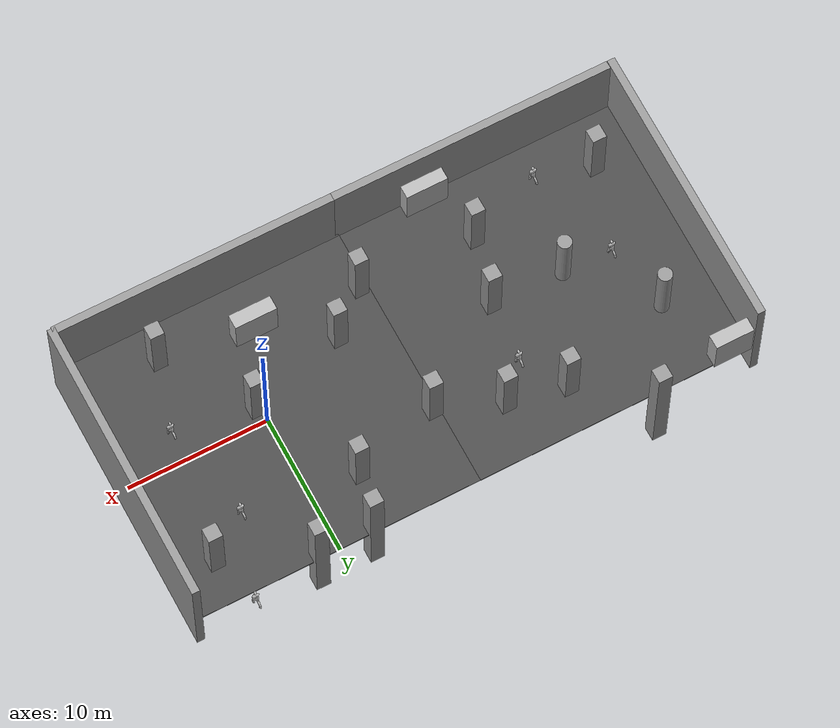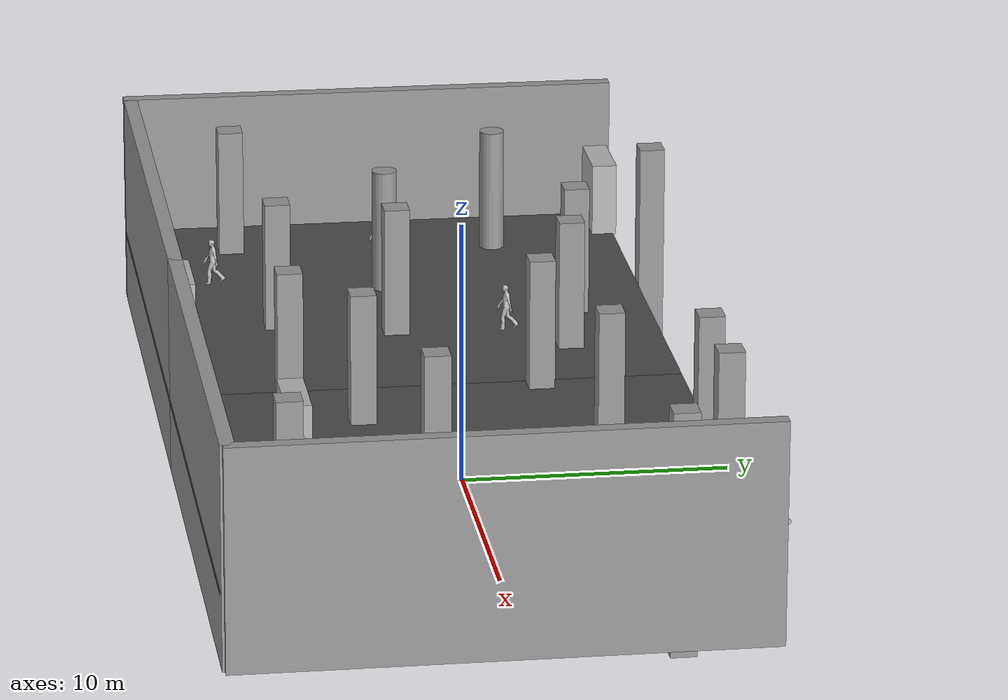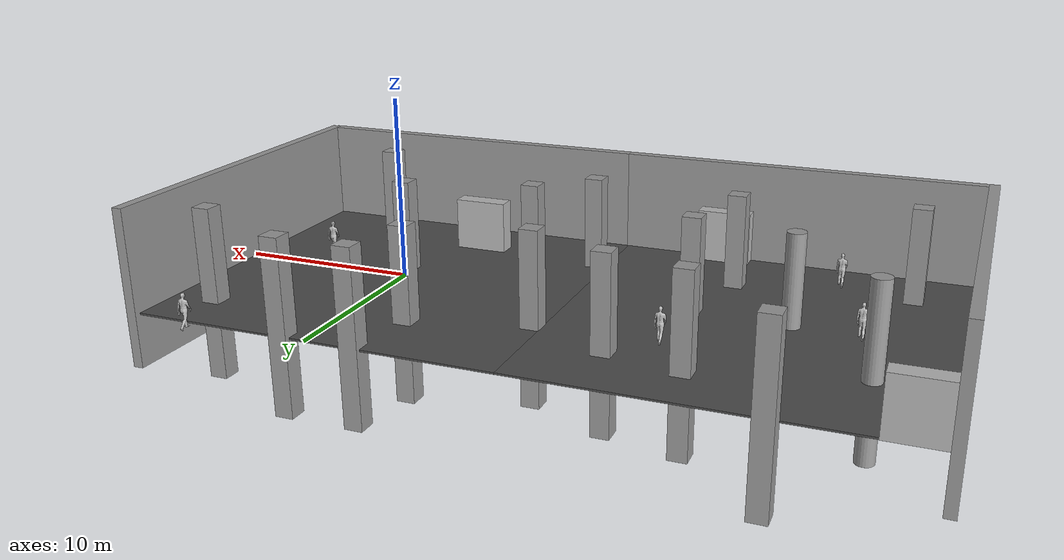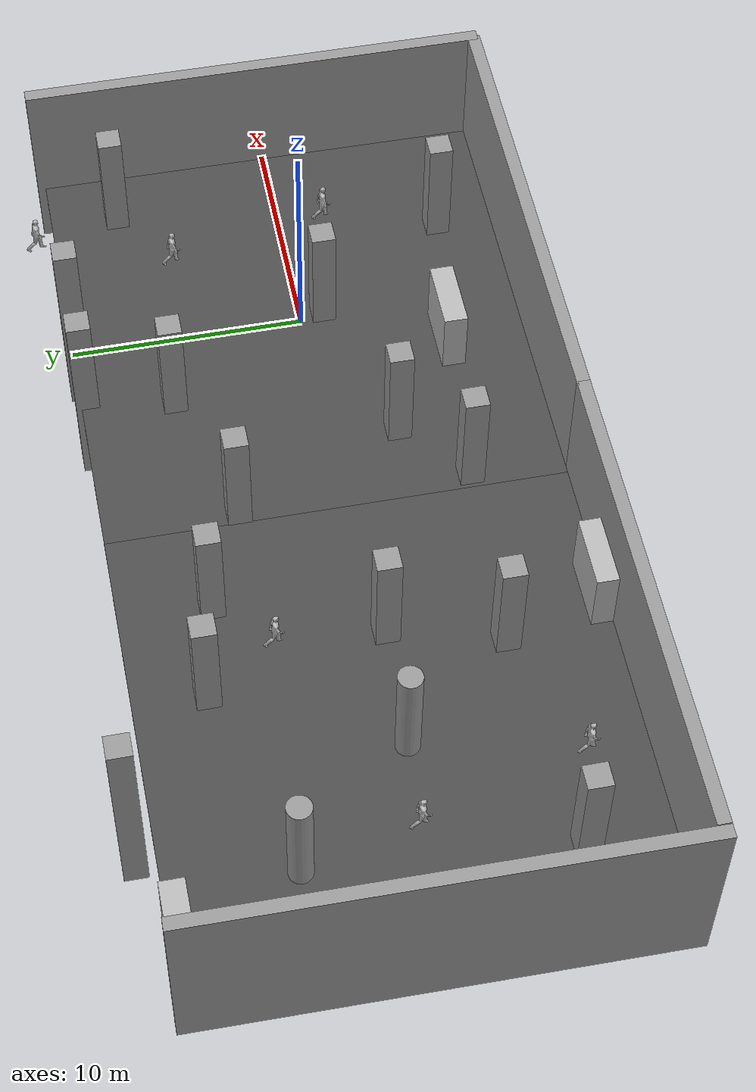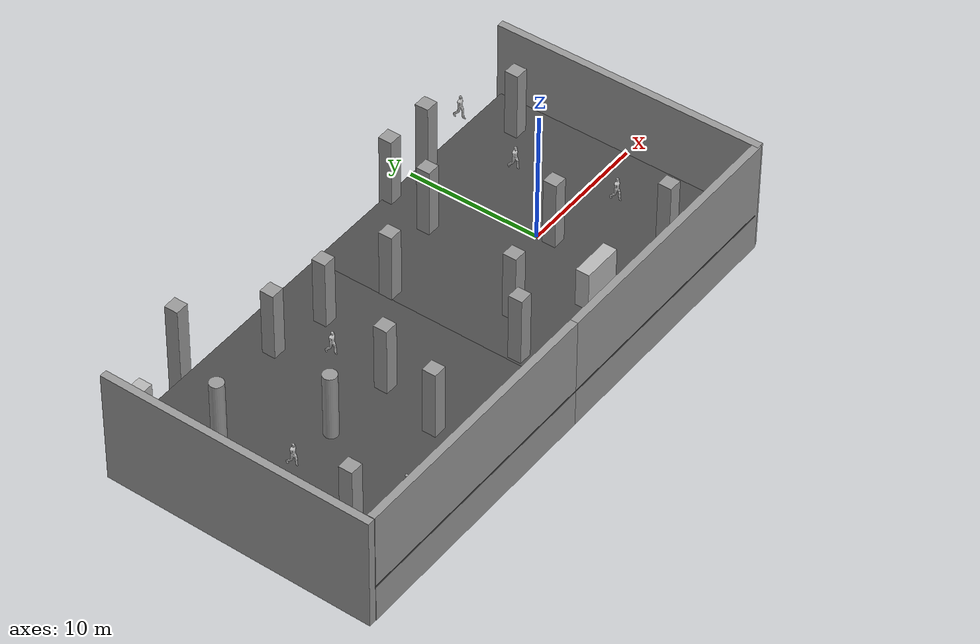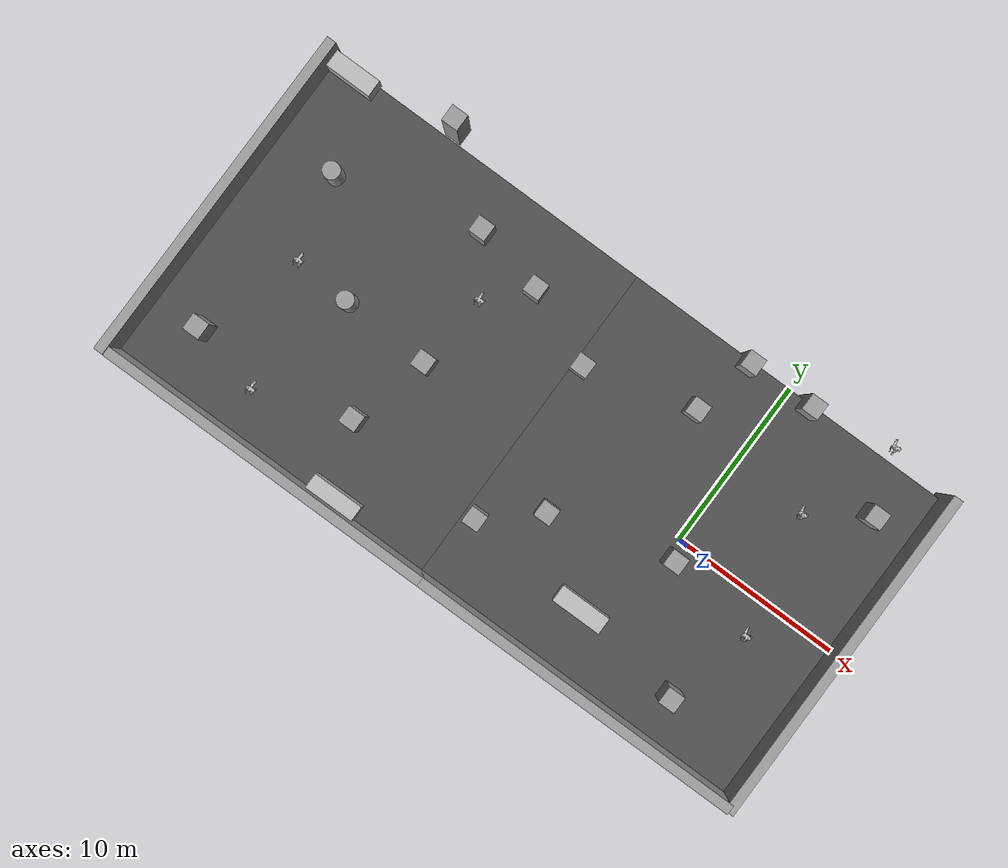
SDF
<sdf version="1.6">
 <model name="MW_world_1_0">
  <link name="link_0">
   <pose>-18.1125 7.0006 0.5 0 -0 0</pose>
   <inertial>
    <mass>9.47467</mass>
    <inertia><ixx>71.6676</ixx><ixy>0</ixy><ixz>0</ixz><iyy>71.6676</iyy><iyz>0</iyz><izz>1.57911</izz></inertia>
   </inertial>
   <visual name="visual">
    <geometry><box><size>1 1 9.47467</size></box></geometry>
    <material>
     <lighting>1</lighting>
     <script><uri>file://media/materials/scripts/gazebo.material</uri><name>Gazebo/Grey</name></script>
     <ambient>0.3 0.3 0.3 1</ambient>
     <diffuse>0.7 0.7 0.7 1</diffuse>
     <specular>0.01 0.01 0.01 1</specular>
     <emissive>0 0 0 1</emissive>
    </material>
   </visual>
   <collision name="collision">
    <geometry><box><size>1 1 9.47467</size></box></geometry>
    <surface>
     <friction>
      <ode><mu>1</mu><mu2>1</mu2><fdir1>0 0 0</fdir1><slip1>0</slip1><slip2>0</slip2></ode>
      <torsional>
       <coefficient>1</coefficient>
       <patch_radius>0</patch_radius>
       <surface_radius>0</surface_radius>
       <use_patch_radius>1</use_patch_radius>
       <ode><slip>0</slip></ode>
      </torsional>
     </friction>
     <bounce><restitution_coefficient>0</restitution_coefficient><threshold>1e+06</threshold></bounce>
     <contact>
      <collide_without_contact>0</collide_without_contact>
      <collide_without_contact_bitmask>1</collide_without_contact_bitmask>
      <collide_bitmask>1</collide_bitmask>
      <ode>
       <soft_cfm>0</soft_cfm>
       <soft_erp>0.2</soft_erp>
       <kp>1e+13</kp>
       <kd>1</kd>
       <max_vel>0.01</max_vel>
       <min_depth>0</min_depth>
      </ode>
      <bullet>
       <split_impulse>1</split_impulse>
       <split_impulse_penetration_threshold>-0.01</split_impulse_penetration_threshold>
       <soft_cfm>0</soft_cfm>
       <soft_erp>0.2</soft_erp>
       <kp>1e+13</kp>
       <kd>1</kd>
      </bullet>
     </contact>
    </surface>
   </collision>
  </link>
  <link name="link_0_0_clone_11">
   <pose>-21.6457 -0.212927 0.5 0 -0 0</pose>
   <inertial>
    <mass>9.05819</mass>
    <inertia><ixx>62.5018</ixx><ixy>0</ixy><ixz>0</ixz><iyy>62.5018</iyy><iyz>0</iyz><izz>1.13227</izz></inertia>
   </inertial>
   <visual name="visual_0">
    <geometry><cylinder><radius>0.5</radius><length>9.05819</length></cylinder></geometry>
    <material>
     <lighting>1</lighting>
     <script><uri>file://media/materials/scripts/gazebo.material</uri><name>Gazebo/Grey</name></script>
     <ambient>0.3 0.3 0.3 1</ambient>
     <diffuse>0.7 0.7 0.7 1</diffuse>
     <specular>0.01 0.01 0.01 1</specular>
     <emissive>0 0 0 1</emissive>
     <shader type="pixel"/>
    </material>
   </visual>
   <collision name="collision">
    <geometry><cylinder><radius>0.5</radius><length>9.05819</length></cylinder></geometry>
    <surface>
     <friction>
      <ode><mu>1</mu><mu2>1</mu2><fdir1>0 0 0</fdir1><slip1>0</slip1><slip2>0</slip2></ode>
      <torsional>
       <coefficient>1</coefficient>
       <patch_radius>0</patch_radius>
       <surface_radius>0</surface_radius>
       <use_patch_radius>1</use_patch_radius>
       <ode><slip>0</slip></ode>
      </torsional>
     </friction>
     <bounce><restitution_coefficient>0</restitution_coefficient><threshold>1e+06</threshold></bounce>
     <contact>
      <collide_without_contact>0</collide_without_contact>
      <collide_without_contact_bitmask>1</collide_without_contact_bitmask>
      <collide_bitmask>1</collide_bitmask>
      <ode>
       <soft_cfm>0</soft_cfm>
       <soft_erp>0.2</soft_erp>
       <kp>1e+13</kp>
       <kd>1</kd>
       <max_vel>0.01</max_vel>
       <min_depth>0</min_depth>
      </ode>
      <bullet>
       <split_impulse>1</split_impulse>
       <split_impulse_penetration_threshold>-0.01</split_impulse_penetration_threshold>
       <soft_cfm>0</soft_cfm>
       <soft_erp>0.2</soft_erp>
       <kp>1e+13</kp>
       <kd>1</kd>
      </bullet>
     </contact>
    </surface>
   </collision>
  </link>
  <link name="link_0_0_clone_12">
   <pose>-26.2128 4.78707 0.5 0 -0 0</pose>
   <inertial>
    <mass>9.05819</mass>
    <inertia><ixx>62.5018</ixx><ixy>0</ixy><ixz>0</ixz><iyy>62.5018</iyy><iyz>0</iyz><izz>1.13227</izz></inertia>
   </inertial>
   <visual name="visual_0">
    <geometry><cylinder><radius>0.5</radius><length>9.05819</length></cylinder></geometry>
    <material>
     <lighting>1</lighting>
     <script><uri>file://media/materials/scripts/gazebo.material</uri><name>Gazebo/Grey</name></script>
     <ambient>0.3 0.3 0.3 1</ambient>
     <diffuse>0.7 0.7 0.7 1</diffuse>
     <specular>0.01 0.01 0.01 1</specular>
     <emissive>0 0 0 1</emissive>
     <shader type="pixel"/>
    </material>
   </visual>
   <collision name="collision">
    <geometry><cylinder><radius>0.5</radius><length>9.05819</length></cylinder></geometry>
    <surface>
     <friction>
      <ode><mu>1</mu><mu2>1</mu2><fdir1>0 0 0</fdir1><slip1>0</slip1><slip2>0</slip2></ode>
      <torsional>
       <coefficient>1</coefficient>
       <patch_radius>0</patch_radius>
       <surface_radius>0</surface_radius>
       <use_patch_radius>1</use_patch_radius>
       <ode><slip>0</slip></ode>
      </torsional>
     </friction>
     <bounce><restitution_coefficient>0</restitution_coefficient><threshold>1e+06</threshold></bounce>
     <contact>
      <collide_without_contact>0</collide_without_contact>
      <collide_without_contact_bitmask>1</collide_without_contact_bitmask>
      <collide_bitmask>1</collide_bitmask>
      <ode>
       <soft_cfm>0</soft_cfm>
       <soft_erp>0.2</soft_erp>
       <kp>1e+13</kp>
       <kd>1</kd>
       <max_vel>0.01</max_vel>
       <min_depth>0</min_depth>
      </ode>
      <bullet>
       <split_impulse>1</split_impulse>
       <split_impulse_penetration_threshold>-0.01</split_impulse_penetration_threshold>
       <soft_cfm>0</soft_cfm>
       <soft_erp>0.2</soft_erp>
       <kp>1e+13</kp>
       <kd>1</kd>
      </bullet>
     </contact>
    </surface>
   </collision>
  </link>
  <link name="link_0_clone">
   <pose>-17.6891 -4.9994 0.5 0 -0 0</pose>
   <inertial>
    <mass>9.47467</mass>
    <inertia><ixx>71.6676</ixx><ixy>0</ixy><ixz>0</ixz><iyy>71.6676</iyy><iyz>0</iyz><izz>1.57911</izz></inertia>
   </inertial>
   <visual name="visual">
    <geometry><box><size>1 1 9.47467</size></box></geometry>
    <material>
     <lighting>1</lighting>
     <script><uri>file://media/materials/scripts/gazebo.material</uri><name>Gazebo/Grey</name></script>
     <ambient>0.3 0.3 0.3 1</ambient>
     <diffuse>0.7 0.7 0.7 1</diffuse>
     <specular>0.01 0.01 0.01 1</specular>
     <emissive>0 0 0 1</emissive>
     <shader type="pixel"/>
    </material>
   </visual>
   <collision name="collision">
    <geometry><box><size>1 1 9.47467</size></box></geometry>
    <surface>
     <friction>
      <ode><mu>1</mu><mu2>1</mu2><fdir1>0 0 0</fdir1><slip1>0</slip1><slip2>0</slip2></ode>
      <torsional>
       <coefficient>1</coefficient>
       <patch_radius>0</patch_radius>
       <surface_radius>0</surface_radius>
       <use_patch_radius>1</use_patch_radius>
       <ode><slip>0</slip></ode>
      </torsional>
     </friction>
     <bounce><restitution_coefficient>0</restitution_coefficient><threshold>1e+06</threshold></bounce>
     <contact>
      <collide_without_contact>0</collide_without_contact>
      <collide_without_contact_bitmask>1</collide_without_contact_bitmask>
      <collide_bitmask>1</collide_bitmask>
      <ode>
       <soft_cfm>0</soft_cfm>
       <soft_erp>0.2</soft_erp>
       <kp>1e+13</kp>
       <kd>1</kd>
       <max_vel>0.01</max_vel>
       <min_depth>0</min_depth>
      </ode>
      <bullet>
       <split_impulse>1</split_impulse>
       <split_impulse_penetration_threshold>-0.01</split_impulse_penetration_threshold>
       <soft_cfm>0</soft_cfm>
       <soft_erp>0.2</soft_erp>
       <kp>1e+13</kp>
       <kd>1</kd>
      </bullet>
     </contact>
    </surface>
   </collision>
  </link>
  <link name="link_0_clone_0">
   <pose>0.330198 -0.999398 0.5 0 -0 0</pose>
   <inertial>
    <mass>9.47467</mass>
    <inertia><ixx>71.6676</ixx><ixy>0</ixy><ixz>0</ixz><iyy>71.6676</iyy><iyz>0</iyz><izz>1.57911</izz></inertia>
   </inertial>
   <visual name="visual">
    <geometry><box><size>1 1 9.47467</size></box></geometry>
    <material>
     <lighting>1</lighting>
     <script><uri>file://media/materials/scripts/gazebo.material</uri><name>Gazebo/Grey</name></script>
     <ambient>0.3 0.3 0.3 1</ambient>
     <diffuse>0.7 0.7 0.7 1</diffuse>
     <specular>0.01 0.01 0.01 1</specular>
     <emissive>0 0 0 1</emissive>
     <shader type="pixel"/>
    </material>
   </visual>
   <collision name="collision">
    <geometry><box><size>1 1 9.47467</size></box></geometry>
    <surface>
     <friction>
      <ode><mu>1</mu><mu2>1</mu2><fdir1>0 0 0</fdir1><slip1>0</slip1><slip2>0</slip2></ode>
      <torsional>
       <coefficient>1</coefficient>
       <patch_radius>0</patch_radius>
       <surface_radius>0</surface_radius>
       <use_patch_radius>1</use_patch_radius>
       <ode><slip>0</slip></ode>
      </torsional>
     </friction>
     <bounce><restitution_coefficient>0</restitution_coefficient><threshold>1e+06</threshold></bounce>
     <contact>
      <collide_without_contact>0</collide_without_contact>
      <collide_without_contact_bitmask>1</collide_without_contact_bitmask>
      <collide_bitmask>1</collide_bitmask>
      <ode>
       <soft_cfm>0</soft_cfm>
       <soft_erp>0.2</soft_erp>
       <kp>1e+13</kp>
       <kd>1</kd>
       <max_vel>0.01</max_vel>
       <min_depth>0</min_depth>
      </ode>
      <bullet>
       <split_impulse>1</split_impulse>
       <split_impulse_penetration_threshold>-0.01</split_impulse_penetration_threshold>
       <soft_cfm>0</soft_cfm>
       <soft_erp>0.2</soft_erp>
       <kp>1e+13</kp>
       <kd>1</kd>
      </bullet>
     </contact>
    </surface>
   </collision>
  </link>
  <link name="link_0_clone_clone">
   <pose>-3.4519 6.08676 0.5 0 -0 0</pose>
   <inertial>
    <mass>9.47467</mass>
    <inertia><ixx>71.6676</ixx><ixy>0</ixy><ixz>0</ixz><iyy>71.6676</iyy><iyz>0</iyz><izz>1.57911</izz></inertia>
   </inertial>
   <visual name="visual">
    <geometry><box><size>1 1 9.47467</size></box></geometry>
    <material>
     <lighting>1</lighting>
     <script><uri>file://media/materials/scripts/gazebo.material</uri><name>Gazebo/Grey</name></script>
     <ambient>0.3 0.3 0.3 1</ambient>
     <diffuse>0.7 0.7 0.7 1</diffuse>
     <specular>0.01 0.01 0.01 1</specular>
     <emissive>0 0 0 1</emissive>
     <shader type="pixel"/>
    </material>
   </visual>
   <collision name="collision">
    <geometry><box><size>1 1 9.47467</size></box></geometry>
    <surface>
     <friction>
      <ode><mu>1</mu><mu2>1</mu2><fdir1>0 0 0</fdir1><slip1>0</slip1><slip2>0</slip2></ode>
      <torsional>
       <coefficient>1</coefficient>
       <patch_radius>0</patch_radius>
       <surface_radius>0</surface_radius>
       <use_patch_radius>1</use_patch_radius>
       <ode><slip>0</slip></ode>
      </torsional>
     </friction>
     <bounce><restitution_coefficient>0</restitution_coefficient><threshold>1e+06</threshold></bounce>
     <contact>
      <collide_without_contact>0</collide_without_contact>
      <collide_without_contact_bitmask>1</collide_without_contact_bitmask>
      <collide_bitmask>1</collide_bitmask>
      <ode>
       <soft_cfm>0</soft_cfm>
       <soft_erp>0.2</soft_erp>
       <kp>1e+13</kp>
       <kd>1</kd>
       <max_vel>0.01</max_vel>
       <min_depth>0</min_depth>
      </ode>
      <bullet>
       <split_impulse>1</split_impulse>
       <split_impulse_penetration_threshold>-0.01</split_impulse_penetration_threshold>
       <soft_cfm>0</soft_cfm>
       <soft_erp>0.2</soft_erp>
       <kp>1e+13</kp>
       <kd>1</kd>
      </bullet>
     </contact>
    </surface>
   </collision>
  </link>
  <link name="link_0_clone_clone_0">
   <pose>-9.4519 -5.40294 0.5 0 -0 0</pose>
   <inertial>
    <mass>9.47467</mass>
    <inertia><ixx>71.6676</ixx><ixy>0</ixy><ixz>0</ixz><iyy>71.6676</iyy><iyz>0</iyz><izz>1.57911</izz></inertia>
   </inertial>
   <visual name="visual">
    <geometry><box><size>1 1 9.47467</size></box></geometry>
    <material>
     <lighting>1</lighting>
     <script><uri>file://media/materials/scripts/gazebo.material</uri><name>Gazebo/Grey</name></script>
     <ambient>0.3 0.3 0.3 1</ambient>
     <diffuse>0.7 0.7 0.7 1</diffuse>
     <specular>0.01 0.01 0.01 1</specular>
     <emissive>0 0 0 1</emissive>
     <shader type="pixel"/>
    </material>
   </visual>
   <collision name="collision">
    <geometry><box><size>1 1 9.47467</size></box></geometry>
    <surface>
     <friction>
      <ode><mu>1</mu><mu2>1</mu2><fdir1>0 0 0</fdir1><slip1>0</slip1><slip2>0</slip2></ode>
      <torsional>
       <coefficient>1</coefficient>
       <patch_radius>0</patch_radius>
       <surface_radius>0</surface_radius>
       <use_patch_radius>1</use_patch_radius>
       <ode><slip>0</slip></ode>
      </torsional>
     </friction>
     <bounce><restitution_coefficient>0</restitution_coefficient><threshold>1e+06</threshold></bounce>
     <contact>
      <collide_without_contact>0</collide_without_contact>
      <collide_without_contact_bitmask>1</collide_without_contact_bitmask>
      <collide_bitmask>1</collide_bitmask>
      <ode>
       <soft_cfm>0</soft_cfm>
       <soft_erp>0.2</soft_erp>
       <kp>1e+13</kp>
       <kd>1</kd>
       <max_vel>0.01</max_vel>
       <min_depth>0</min_depth>
      </ode>
      <bullet>
       <split_impulse>1</split_impulse>
       <split_impulse_penetration_threshold>-0.01</split_impulse_penetration_threshold>
       <soft_cfm>0</soft_cfm>
       <soft_erp>0.2</soft_erp>
       <kp>1e+13</kp>
       <kd>1</kd>
      </bullet>
     </contact>
    </surface>
   </collision>
  </link>
  <link name="link_0_clone_clone_1">
   <pose>-16.4519 -0.40294 0.5 0 -0 0</pose>
   <inertial>
    <mass>9.47467</mass>
    <inertia><ixx>71.6676</ixx><ixy>0</ixy><ixz>0</ixz><iyy>71.6676</iyy><iyz>0</iyz><izz>1.57911</izz></inertia>
   </inertial>
   <visual name="visual">
    <geometry><box><size>1 1 9.47467</size></box></geometry>
    <material>
     <lighting>1</lighting>
     <script><uri>file://media/materials/scripts/gazebo.material</uri><name>Gazebo/Grey</name></script>
     <ambient>0.3 0.3 0.3 1</ambient>
     <diffuse>0.7 0.7 0.7 1</diffuse>
     <specular>0.01 0.01 0.01 1</specular>
     <emissive>0 0 0 1</emissive>
     <shader type="pixel"/>
    </material>
   </visual>
   <collision name="collision">
    <geometry><box><size>1 1 9.47467</size></box></geometry>
    <surface>
     <friction>
      <ode><mu>1</mu><mu2>1</mu2><fdir1>0 0 0</fdir1><slip1>0</slip1><slip2>0</slip2></ode>
      <torsional>
       <coefficient>1</coefficient>
       <patch_radius>0</patch_radius>
       <surface_radius>0</surface_radius>
       <use_patch_radius>1</use_patch_radius>
       <ode><slip>0</slip></ode>
      </torsional>
     </friction>
     <bounce><restitution_coefficient>0</restitution_coefficient><threshold>1e+06</threshold></bounce>
     <contact>
      <collide_without_contact>0</collide_without_contact>
      <collide_without_contact_bitmask>1</collide_without_contact_bitmask>
      <collide_bitmask>1</collide_bitmask>
      <ode>
       <soft_cfm>0</soft_cfm>
       <soft_erp>0.2</soft_erp>
       <kp>1e+13</kp>
       <kd>1</kd>
       <max_vel>0.01</max_vel>
       <min_depth>0</min_depth>
      </ode>
      <bullet>
       <split_impulse>1</split_impulse>
       <split_impulse_penetration_threshold>-0.01</split_impulse_penetration_threshold>
       <soft_cfm>0</soft_cfm>
       <soft_erp>0.2</soft_erp>
       <kp>1e+13</kp>
       <kd>1</kd>
      </bullet>
     </contact>
    </surface>
   </collision>
  </link>
  <link name="link_0_clone_clone_1_clone">
   <pose>-27.0695 -5.91768 0.5 0 -0 0</pose>
   <inertial>
    <mass>9.47467</mass>
    <inertia><ixx>71.6676</ixx><ixy>0</ixy><ixz>0</ixz><iyy>71.6676</iyy><iyz>0</iyz><izz>1.57911</izz></inertia>
   </inertial>
   <visual name="visual">
    <geometry><box><size>1 1 9.47467</size></box></geometry>
    <material>
     <lighting>1</lighting>
     <script><uri>file://media/materials/scripts/gazebo.material</uri><name>Gazebo/Grey</name></script>
     <ambient>0.3 0.3 0.3 1</ambient>
     <diffuse>0.7 0.7 0.7 1</diffuse>
     <specular>0.01 0.01 0.01 1</specular>
     <emissive>0 0 0 1</emissive>
     <shader type="pixel"/>
    </material>
   </visual>
   <collision name="collision">
    <geometry><box><size>1 1 9.47467</size></box></geometry>
    <surface>
     <friction>
      <ode><mu>1</mu><mu2>1</mu2><fdir1>0 0 0</fdir1><slip1>0</slip1><slip2>0</slip2></ode>
      <torsional>
       <coefficient>1</coefficient>
       <patch_radius>0</patch_radius>
       <surface_radius>0</surface_radius>
       <use_patch_radius>1</use_patch_radius>
       <ode><slip>0</slip></ode>
      </torsional>
     </friction>
     <bounce><restitution_coefficient>0</restitution_coefficient><threshold>1e+06</threshold></bounce>
     <contact>
      <collide_without_contact>0</collide_without_contact>
      <collide_without_contact_bitmask>1</collide_without_contact_bitmask>
      <collide_bitmask>1</collide_bitmask>
      <ode>
       <soft_cfm>0</soft_cfm>
       <soft_erp>0.2</soft_erp>
       <kp>1e+13</kp>
       <kd>1</kd>
       <max_vel>0.01</max_vel>
       <min_depth>0</min_depth>
      </ode>
      <bullet>
       <split_impulse>1</split_impulse>
       <split_impulse_penetration_threshold>-0.01</split_impulse_penetration_threshold>
       <soft_cfm>0</soft_cfm>
       <soft_erp>0.2</soft_erp>
       <kp>1e+13</kp>
       <kd>1</kd>
      </bullet>
     </contact>
    </surface>
   </collision>
  </link>
  <link name="link_0_clone_clone_1_clone_0">
   <pose>4.38344 -6.91768 0.5 0 -0 0</pose>
   <inertial>
    <mass>9.47467</mass>
    <inertia><ixx>71.6676</ixx><ixy>0</ixy><ixz>0</ixz><iyy>71.6676</iyy><iyz>0</iyz><izz>1.57911</izz></inertia>
   </inertial>
   <visual name="visual">
    <geometry><box><size>1 1 9.47467</size></box></geometry>
    <material>
     <lighting>1</lighting>
     <script><uri>file://media/materials/scripts/gazebo.material</uri><name>Gazebo/Grey</name></script>
     <ambient>0.3 0.3 0.3 1</ambient>
     <diffuse>0.7 0.7 0.7 1</diffuse>
     <specular>0.01 0.01 0.01 1</specular>
     <emissive>0 0 0 1</emissive>
     <shader type="pixel"/>
    </material>
   </visual>
   <collision name="collision">
    <geometry><box><size>1 1 9.47467</size></box></geometry>
    <surface>
     <friction>
      <ode><mu>1</mu><mu2>1</mu2><fdir1>0 0 0</fdir1><slip1>0</slip1><slip2>0</slip2></ode>
      <torsional>
       <coefficient>1</coefficient>
       <patch_radius>0</patch_radius>
       <surface_radius>0</surface_radius>
       <use_patch_radius>1</use_patch_radius>
       <ode><slip>0</slip></ode>
      </torsional>
     </friction>
     <bounce><restitution_coefficient>0</restitution_coefficient><threshold>1e+06</threshold></bounce>
     <contact>
      <collide_without_contact>0</collide_without_contact>
      <collide_without_contact_bitmask>1</collide_without_contact_bitmask>
      <collide_bitmask>1</collide_bitmask>
      <ode>
       <soft_cfm>0</soft_cfm>
       <soft_erp>0.2</soft_erp>
       <kp>1e+13</kp>
       <kd>1</kd>
       <max_vel>0.01</max_vel>
       <min_depth>0</min_depth>
      </ode>
      <bullet>
       <split_impulse>1</split_impulse>
       <split_impulse_penetration_threshold>-0.01</split_impulse_penetration_threshold>
       <soft_cfm>0</soft_cfm>
       <soft_erp>0.2</soft_erp>
       <kp>1e+13</kp>
       <kd>1</kd>
      </bullet>
     </contact>
    </surface>
   </collision>
  </link>
  <link name="link_0_clone_clone_1_clone_1">
   <pose>7.38344 7.08232 0.5 0 -0 0</pose>
   <inertial>
    <mass>9.47467</mass>
    <inertia><ixx>71.6676</ixx><ixy>0</ixy><ixz>0</ixz><iyy>71.6676</iyy><iyz>0</iyz><izz>1.57911</izz></inertia>
   </inertial>
   <visual name="visual">
    <geometry><box><size>1 1 9.47467</size></box></geometry>
    <material>
     <lighting>1</lighting>
     <script><uri>file://media/materials/scripts/gazebo.material</uri><name>Gazebo/Grey</name></script>
     <ambient>0.3 0.3 0.3 1</ambient>
     <diffuse>0.7 0.7 0.7 1</diffuse>
     <specular>0.01 0.01 0.01 1</specular>
     <emissive>0 0 0 1</emissive>
     <shader type="pixel"/>
    </material>
   </visual>
   <collision name="collision">
    <geometry><box><size>1 1 9.47467</size></box></geometry>
    <surface>
     <friction>
      <ode><mu>1</mu><mu2>1</mu2><fdir1>0 0 0</fdir1><slip1>0</slip1><slip2>0</slip2></ode>
      <torsional>
       <coefficient>1</coefficient>
       <patch_radius>0</patch_radius>
       <surface_radius>0</surface_radius>
       <use_patch_radius>1</use_patch_radius>
       <ode><slip>0</slip></ode>
      </torsional>
     </friction>
     <bounce><restitution_coefficient>0</restitution_coefficient><threshold>1e+06</threshold></bounce>
     <contact>
      <collide_without_contact>0</collide_without_contact>
      <collide_without_contact_bitmask>1</collide_without_contact_bitmask>
      <collide_bitmask>1</collide_bitmask>
      <ode>
       <soft_cfm>0</soft_cfm>
       <soft_erp>0.2</soft_erp>
       <kp>1e+13</kp>
       <kd>1</kd>
       <max_vel>0.01</max_vel>
       <min_depth>0</min_depth>
      </ode>
      <bullet>
       <split_impulse>1</split_impulse>
       <split_impulse_penetration_threshold>-0.01</split_impulse_penetration_threshold>
       <soft_cfm>0</soft_cfm>
       <soft_erp>0.2</soft_erp>
       <kp>1e+13</kp>
       <kd>1</kd>
      </bullet>
     </contact>
    </surface>
   </collision>
  </link>
  <link name="link_0_clone_clone_1_clone_2">
   <pose>-6.61656 -2.91768 0.5 0 -0 0</pose>
   <inertial>
    <mass>9.47467</mass>
    <inertia><ixx>71.6676</ixx><ixy>0</ixy><ixz>0</ixz><iyy>71.6676</iyy><iyz>0</iyz><izz>1.57911</izz></inertia>
   </inertial>
   <visual name="visual">
    <geometry><box><size>1 1 9.47467</size></box></geometry>
    <material>
     <lighting>1</lighting>
     <script><uri>file://media/materials/scripts/gazebo.material</uri><name>Gazebo/Grey</name></script>
     <ambient>0.3 0.3 0.3 1</ambient>
     <diffuse>0.7 0.7 0.7 1</diffuse>
     <specular>0.01 0.01 0.01 1</specular>
     <emissive>0 0 0 1</emissive>
     <shader type="pixel"/>
    </material>
   </visual>
   <collision name="collision">
    <geometry><box><size>1 1 9.47467</size></box></geometry>
    <surface>
     <friction>
      <ode><mu>1</mu><mu2>1</mu2><fdir1>0 0 0</fdir1><slip1>0</slip1><slip2>0</slip2></ode>
      <torsional>
       <coefficient>1</coefficient>
       <patch_radius>0</patch_radius>
       <surface_radius>0</surface_radius>
       <use_patch_radius>1</use_patch_radius>
       <ode><slip>0</slip></ode>
      </torsional>
     </friction>
     <bounce><restitution_coefficient>0</restitution_coefficient><threshold>1e+06</threshold></bounce>
     <contact>
      <collide_without_contact>0</collide_without_contact>
      <collide_without_contact_bitmask>1</collide_without_contact_bitmask>
      <collide_bitmask>1</collide_bitmask>
      <ode>
       <soft_cfm>0</soft_cfm>
       <soft_erp>0.2</soft_erp>
       <kp>1e+13</kp>
       <kd>1</kd>
       <max_vel>0.01</max_vel>
       <min_depth>0</min_depth>
      </ode>
      <bullet>
       <split_impulse>1</split_impulse>
       <split_impulse_penetration_threshold>-0.01</split_impulse_penetration_threshold>
       <soft_cfm>0</soft_cfm>
       <soft_erp>0.2</soft_erp>
       <kp>1e+13</kp>
       <kd>1</kd>
      </bullet>
     </contact>
    </surface>
   </collision>
  </link>
  <link name="link_0_clone_clone_clone_2_clone">
   <pose>-14.0181 6.18483 0.5 0 -0 0</pose>
   <inertial>
    <mass>9.47467</mass>
    <inertia><ixx>71.6676</ixx><ixy>0</ixy><ixz>0</ixz><iyy>71.6676</iyy><iyz>0</iyz><izz>1.57911</izz></inertia>
   </inertial>
   <visual name="visual">
    <geometry><box><size>1 1 9.47467</size></box></geometry>
    <material>
     <lighting>1</lighting>
     <script><uri>file://media/materials/scripts/gazebo.material</uri><name>Gazebo/Grey</name></script>
     <ambient>0.3 0.3 0.3 1</ambient>
     <diffuse>0.7 0.7 0.7 1</diffuse>
     <specular>0.01 0.01 0.01 1</specular>
     <emissive>0 0 0 1</emissive>
     <shader type="pixel"/>
    </material>
   </visual>
   <collision name="collision">
    <geometry><box><size>1 1 9.47467</size></box></geometry>
    <surface>
     <friction>
      <ode><mu>1</mu><mu2>1</mu2><fdir1>0 0 0</fdir1><slip1>0</slip1><slip2>0</slip2></ode>
      <torsional>
       <coefficient>1</coefficient>
       <patch_radius>0</patch_radius>
       <surface_radius>0</surface_radius>
       <use_patch_radius>1</use_patch_radius>
       <ode><slip>0</slip></ode>
      </torsional>
     </friction>
     <bounce><restitution_coefficient>0</restitution_coefficient><threshold>1e+06</threshold></bounce>
     <contact>
      <collide_without_contact>0</collide_without_contact>
      <collide_without_contact_bitmask>1</collide_without_contact_bitmask>
      <collide_bitmask>1</collide_bitmask>
      <ode>
       <soft_cfm>0</soft_cfm>
       <soft_erp>0.2</soft_erp>
       <kp>1e+13</kp>
       <kd>1</kd>
       <max_vel>0.01</max_vel>
       <min_depth>0</min_depth>
      </ode>
      <bullet>
       <split_impulse>1</split_impulse>
       <split_impulse_penetration_threshold>-0.01</split_impulse_penetration_threshold>
       <soft_cfm>0</soft_cfm>
       <soft_erp>0.2</soft_erp>
       <kp>1e+13</kp>
       <kd>1</kd>
      </bullet>
     </contact>
    </surface>
   </collision>
  </link>
  <link name="link_0_clone_clone_clone_3">
   <pose>1.35425 9.78707 0.5 0 -0 0</pose>
   <inertial>
    <mass>9.47467</mass>
    <inertia><ixx>71.6676</ixx><ixy>0</ixy><ixz>0</ixz><iyy>71.6676</iyy><iyz>0</iyz><izz>1.57911</izz></inertia>
   </inertial>
   <visual name="visual">
    <geometry><box><size>1 1 9.47467</size></box></geometry>
    <material>
     <lighting>1</lighting>
     <script><uri>file://media/materials/scripts/gazebo.material</uri><name>Gazebo/Grey</name></script>
     <ambient>0.3 0.3 0.3 1</ambient>
     <diffuse>0.7 0.7 0.7 1</diffuse>
     <specular>0.01 0.01 0.01 1</specular>
     <emissive>0 0 0 1</emissive>
     <shader type="pixel"/>
    </material>
   </visual>
   <collision name="collision">
    <geometry><box><size>1 1 9.47467</size></box></geometry>
    <surface>
     <friction>
      <ode><mu>1</mu><mu2>1</mu2><fdir1>0 0 0</fdir1><slip1>0</slip1><slip2>0</slip2></ode>
      <torsional>
       <coefficient>1</coefficient>
       <patch_radius>0</patch_radius>
       <surface_radius>0</surface_radius>
       <use_patch_radius>1</use_patch_radius>
       <ode><slip>0</slip></ode>
      </torsional>
     </friction>
     <bounce><restitution_coefficient>0</restitution_coefficient><threshold>1e+06</threshold></bounce>
     <contact>
      <collide_without_contact>0</collide_without_contact>
      <collide_without_contact_bitmask>1</collide_without_contact_bitmask>
      <collide_bitmask>1</collide_bitmask>
      <ode>
       <soft_cfm>0</soft_cfm>
       <soft_erp>0.2</soft_erp>
       <kp>1e+13</kp>
       <kd>1</kd>
       <max_vel>0.01</max_vel>
       <min_depth>0</min_depth>
      </ode>
      <bullet>
       <split_impulse>1</split_impulse>
       <split_impulse_penetration_threshold>-0.01</split_impulse_penetration_threshold>
       <soft_cfm>0</soft_cfm>
       <soft_erp>0.2</soft_erp>
       <kp>1e+13</kp>
       <kd>1</kd>
      </bullet>
     </contact>
    </surface>
   </collision>
  </link>
  <link name="link_0_clone_clone_clone_4_clone">
   <pose>-2.57831 9.73205 0.5 0 -0 0</pose>
   <inertial>
    <mass>9.47467</mass>
    <inertia><ixx>71.6676</ixx><ixy>0</ixy><ixz>0</ixz><iyy>71.6676</iyy><iyz>0</iyz><izz>1.57911</izz></inertia>
   </inertial>
   <visual name="visual">
    <geometry><box><size>1 1 9.47467</size></box></geometry>
    <material>
     <lighting>1</lighting>
     <script><uri>file://media/materials/scripts/gazebo.material</uri><name>Gazebo/Grey</name></script>
     <ambient>0.3 0.3 0.3 1</ambient>
     <diffuse>0.7 0.7 0.7 1</diffuse>
     <specular>0.01 0.01 0.01 1</specular>
     <emissive>0 0 0 1</emissive>
     <shader type="pixel"/>
    </material>
   </visual>
   <collision name="collision">
    <geometry><box><size>1 1 9.47467</size></box></geometry>
    <surface>
     <friction>
      <ode><mu>1</mu><mu2>1</mu2><fdir1>0 0 0</fdir1><slip1>0</slip1><slip2>0</slip2></ode>
      <torsional>
       <coefficient>1</coefficient>
       <patch_radius>0</patch_radius>
       <surface_radius>0</surface_radius>
       <use_patch_radius>1</use_patch_radius>
       <ode><slip>0</slip></ode>
      </torsional>
     </friction>
     <bounce><restitution_coefficient>0</restitution_coefficient><threshold>1e+06</threshold></bounce>
     <contact>
      <collide_without_contact>0</collide_without_contact>
      <collide_without_contact_bitmask>1</collide_without_contact_bitmask>
      <collide_bitmask>1</collide_bitmask>
      <ode>
       <soft_cfm>0</soft_cfm>
       <soft_erp>0.2</soft_erp>
       <kp>1e+13</kp>
       <kd>1</kd>
       <max_vel>0.01</max_vel>
       <min_depth>0</min_depth>
      </ode>
      <bullet>
       <split_impulse>1</split_impulse>
       <split_impulse_penetration_threshold>-0.01</split_impulse_penetration_threshold>
       <soft_cfm>0</soft_cfm>
       <soft_erp>0.2</soft_erp>
       <kp>1e+13</kp>
       <kd>1</kd>
      </bullet>
     </contact>
    </surface>
   </collision>
  </link>
  <link name="link_0_clone_clone_clone_5">
   <pose>-9.64575 4.37535 0.5 0 -0 0</pose>
   <inertial>
    <mass>9.47467</mass>
    <inertia><ixx>71.6676</ixx><ixy>0</ixy><ixz>0</ixz><iyy>71.6676</iyy><iyz>0</iyz><izz>1.57911</izz></inertia>
   </inertial>
   <visual name="visual">
    <geometry><box><size>1 1 9.47467</size></box></geometry>
    <material>
     <lighting>1</lighting>
     <script><uri>file://media/materials/scripts/gazebo.material</uri><name>Gazebo/Grey</name></script>
     <ambient>0.3 0.3 0.3 1</ambient>
     <diffuse>0.7 0.7 0.7 1</diffuse>
     <specular>0.01 0.01 0.01 1</specular>
     <emissive>0 0 0 1</emissive>
     <shader type="pixel"/>
    </material>
   </visual>
   <collision name="collision">
    <geometry><box><size>1 1 9.47467</size></box></geometry>
    <surface>
     <friction>
      <ode><mu>1</mu><mu2>1</mu2><fdir1>0 0 0</fdir1><slip1>0</slip1><slip2>0</slip2></ode>
      <torsional>
       <coefficient>1</coefficient>
       <patch_radius>0</patch_radius>
       <surface_radius>0</surface_radius>
       <use_patch_radius>1</use_patch_radius>
       <ode><slip>0</slip></ode>
      </torsional>
     </friction>
     <bounce><restitution_coefficient>0</restitution_coefficient><threshold>1e+06</threshold></bounce>
     <contact>
      <collide_without_contact>0</collide_without_contact>
      <collide_without_contact_bitmask>1</collide_without_contact_bitmask>
      <collide_bitmask>1</collide_bitmask>
      <ode>
       <soft_cfm>0</soft_cfm>
       <soft_erp>0.2</soft_erp>
       <kp>1e+13</kp>
       <kd>1</kd>
       <max_vel>0.01</max_vel>
       <min_depth>0</min_depth>
      </ode>
      <bullet>
       <split_impulse>1</split_impulse>
       <split_impulse_penetration_threshold>-0.01</split_impulse_penetration_threshold>
       <soft_cfm>0</soft_cfm>
       <soft_erp>0.2</soft_erp>
       <kp>1e+13</kp>
       <kd>1</kd>
      </bullet>
     </contact>
    </surface>
   </collision>
  </link>
  <link name="link_0_clone_clone_clone_6">
   <pose>-22.6457 10.7871 0.5 0 -0 0</pose>
   <inertial>
    <mass>9.47467</mass>
    <inertia><ixx>71.6676</ixx><ixy>0</ixy><ixz>0</ixz><iyy>71.6676</iyy><iyz>0</iyz><izz>1.57911</izz></inertia>
   </inertial>
   <visual name="visual">
    <geometry><box><size>1 1 9.47467</size></box></geometry>
    <material>
     <lighting>1</lighting>
     <script><uri>file://media/materials/scripts/gazebo.material</uri><name>Gazebo/Grey</name></script>
     <ambient>0.3 0.3 0.3 1</ambient>
     <diffuse>0.7 0.7 0.7 1</diffuse>
     <specular>0.01 0.01 0.01 1</specular>
     <emissive>0 0 0 1</emissive>
     <shader type="pixel"/>
    </material>
   </visual>
   <collision name="collision">
    <geometry><box><size>1 1 9.47467</size></box></geometry>
    <surface>
     <friction>
      <ode><mu>1</mu><mu2>1</mu2><fdir1>0 0 0</fdir1><slip1>0</slip1><slip2>0</slip2></ode>
      <torsional>
       <coefficient>1</coefficient>
       <patch_radius>0</patch_radius>
       <surface_radius>0</surface_radius>
       <use_patch_radius>1</use_patch_radius>
       <ode><slip>0</slip></ode>
      </torsional>
     </friction>
     <bounce><restitution_coefficient>0</restitution_coefficient><threshold>1e+06</threshold></bounce>
     <contact>
      <collide_without_contact>0</collide_without_contact>
      <collide_without_contact_bitmask>1</collide_without_contact_bitmask>
      <collide_bitmask>1</collide_bitmask>
      <ode>
       <soft_cfm>0</soft_cfm>
       <soft_erp>0.2</soft_erp>
       <kp>1e+13</kp>
       <kd>1</kd>
       <max_vel>0.01</max_vel>
       <min_depth>0</min_depth>
      </ode>
      <bullet>
       <split_impulse>1</split_impulse>
       <split_impulse_penetration_threshold>-0.01</split_impulse_penetration_threshold>
       <soft_cfm>0</soft_cfm>
       <soft_erp>0.2</soft_erp>
       <kp>1e+13</kp>
       <kd>1</kd>
      </bullet>
     </contact>
    </surface>
   </collision>
  </link>
  <model name="asphalt_plane">
   <static>1</static>
   <link name="link">
    <collision name="collision"><geometry><box><size>20 20 0.1</size></box></geometry></collision>
    <visual name="visual">
     <cast_shadows>0</cast_shadows>
     <geometry><box><size>20 20 0.1</size></box></geometry>
     <material>
      <script>
       <uri>model://asphalt_plane/materials/scripts</uri>
       <uri>model://asphalt_plane/materials/textures</uri>
       <name>vrc/asphalt</name>
      </script>
     </material>
    </visual>
   </link>
   <pose>-0.112542 0.000602 0 0 -0 0</pose>
  </model>
  <model name="asphalt_plane_clone">
   <static>1</static>
   <link name="link">
    <collision name="collision"><geometry><box><size>20 20 0.1</size></box></geometry></collision>
    <visual name="visual">
     <cast_shadows>0</cast_shadows>
     <geometry><box><size>20 20 0.1</size></box></geometry>
     <material>
      <script>
       <uri>model://asphalt_plane/materials/scripts</uri>
       <uri>model://asphalt_plane/materials/textures</uri>
       <name>vrc/asphalt</name>
      </script>
     </material>
    </visual>
   </link>
   <pose>-20.1125 0.000602 0 0 -0 0</pose>
  </model>
  <model name="brick_box_3x1x3_clone">
   <static>1</static>
   <link name="chassis">
    <pose>0 0 1.5 0 -0 0</pose>
    <collision name="collision"><geometry><box><size>3 1 3</size></box></geometry></collision>
    <visual name="visual">
     <geometry><mesh><uri>model://brick_box_3x1x3/meshes/simple_box.dae</uri><scale>3 1 3</scale></mesh></geometry>
     <material>
      <script>
       <uri>model://brick_box_3x1x3/materials/scripts</uri>
       <uri>model://brick_box_3x1x3/materials/textures</uri>
       <name>BrickBox/Diffuse</name>
      </script>
     </material>
    </visual>
   </link>
   <pose>-2.11254 -5.9994 0 0 -0 0</pose>
  </model>
  <model name="brick_box_3x1x3_clone_0">
   <static>1</static>
   <link name="chassis">
    <pose>0 0 1.5 0 -0 0</pose>
    <collision name="collision"><geometry><box><size>3 1 3</size></box></geometry></collision>
    <visual name="visual">
     <geometry><mesh><uri>model://brick_box_3x1x3/meshes/simple_box.dae</uri><scale>3 1 3</scale></mesh></geometry>
     <material>
      <script>
       <uri>model://brick_box_3x1x3/materials/scripts</uri>
       <uri>model://brick_box_3x1x3/materials/textures</uri>
       <name>BrickBox/Diffuse</name>
      </script>
     </material>
    </visual>
   </link>
   <pose>-28.6166 9.63113 0 0 -0 0</pose>
  </model>
  <model name="brick_box_3x1x3_clone_1_clone">
   <static>1</static>
   <link name="chassis">
    <pose>0 0 1.5 0 -0 0</pose>
    <collision name="collision"><geometry><box><size>3 1 3</size></box></geometry></collision>
    <visual name="visual">
     <geometry><mesh><uri>model://brick_box_3x1x3/meshes/simple_box.dae</uri><scale>3 1 3</scale></mesh></geometry>
     <material>
      <script>
       <uri>model://brick_box_3x1x3/materials/scripts</uri>
       <uri>model://brick_box_3x1x3/materials/textures</uri>
       <name>BrickBox/Diffuse</name>
      </script>
     </material>
    </visual>
   </link>
   <pose>-16.1125 -8.9994 0 0 -0 0</pose>
  </model>
  <model name="grey_wall_mw">
   <link name="link">
    <pose>-8.81665 -2.69351 1.4 0 -0 0</pose>
    <inertial>
     <inertia><ixx>nan</ixx><ixy>0</ixy><ixz>0</ixz><iyy>nan</iyy><iyz>0</iyz><izz>nan</izz></inertia>
     <mass>0</mass>
    </inertial>
    <visual name="visual">
     <cast_shadows>0</cast_shadows>
     <geometry><box><size>20.2056 0.556506 8.63552</size></box></geometry>
     <material>
      <script>
       <uri>model://grey_wall/materials/scripts</uri>
       <uri>model://grey_wall/materials/textures</uri>
       <name>vrc/grey_wall</name>
      </script>
      <ambient>1 1 1 1</ambient>
      <diffuse>1 1 1 1</diffuse>
      <specular>0 0 0 1</specular>
      <emissive>0 0 0 1</emissive>
     </material>
    </visual>
    <collision name="collision">
     <geometry><box><size>20.2056 0.556506 8.63552</size></box></geometry>
     <surface>
      <friction>
       <ode><mu>1</mu><mu2>1</mu2><fdir1>0 0 0</fdir1><slip1>0</slip1><slip2>0</slip2></ode>
       <torsional>
        <coefficient>1</coefficient>
        <patch_radius>0</patch_radius>
        <surface_radius>0</surface_radius>
        <use_patch_radius>1</use_patch_radius>
        <ode><slip>0</slip></ode>
       </torsional>
      </friction>
      <bounce><restitution_coefficient>0</restitution_coefficient><threshold>1e+06</threshold></bounce>
      <contact>
       <collide_without_contact>0</collide_without_contact>
       <collide_without_contact_bitmask>1</collide_without_contact_bitmask>
       <collide_bitmask>1</collide_bitmask>
       <ode>
        <soft_cfm>0</soft_cfm>
        <soft_erp>0.2</soft_erp>
        <kp>1e+13</kp>
        <kd>1</kd>
        <max_vel>0.01</max_vel>
        <min_depth>0</min_depth>
       </ode>
       <bullet>
        <split_impulse>1</split_impulse>
        <split_impulse_penetration_threshold>-0.01</split_impulse_penetration_threshold>
        <soft_cfm>0</soft_cfm>
        <soft_erp>0.2</soft_erp>
        <kp>1e+13</kp>
        <kd>1</kd>
       </bullet>
      </contact>
     </surface>
    </collision>
   </link>
   <static>1</static>
   <pose>-11.1125 -6.9994 0 0 -0 0</pose>
  </model>
  <model name="grey_wall_mw_clone">
   <link name="link">
    <pose>-8.81665 -2.69351 1.4 0 -0 0</pose>
    <inertial>
     <inertia><ixx>nan</ixx><ixy>0</ixy><ixz>0</ixz><iyy>nan</iyy><iyz>0</iyz><izz>nan</izz></inertia>
     <mass>0</mass>
    </inertial>
    <visual name="visual">
     <cast_shadows>0</cast_shadows>
     <geometry><box><size>20.2056 0.556506 8.63552</size></box></geometry>
     <material>
      <script>
       <uri>model://grey_wall/materials/scripts</uri>
       <uri>model://grey_wall/materials/textures</uri>
       <name>vrc/grey_wall</name>
      </script>
      <ambient>1 1 1 1</ambient>
      <diffuse>1 1 1 1</diffuse>
      <specular>0 0 0 1</specular>
      <emissive>0 0 0 1</emissive>
     </material>
    </visual>
    <collision name="collision">
     <geometry><box><size>20.2056 0.556506 8.63552</size></box></geometry>
     <surface>
      <friction>
       <ode><mu>1</mu><mu2>1</mu2><fdir1>0 0 0</fdir1><slip1>0</slip1><slip2>0</slip2></ode>
       <torsional>
        <coefficient>1</coefficient>
        <patch_radius>0</patch_radius>
        <surface_radius>0</surface_radius>
        <use_patch_radius>1</use_patch_radius>
        <ode><slip>0</slip></ode>
       </torsional>
      </friction>
      <bounce><restitution_coefficient>0</restitution_coefficient><threshold>1e+06</threshold></bounce>
      <contact>
       <collide_without_contact>0</collide_without_contact>
       <collide_without_contact_bitmask>1</collide_without_contact_bitmask>
       <collide_bitmask>1</collide_bitmask>
       <ode>
        <soft_cfm>0</soft_cfm>
        <soft_erp>0.2</soft_erp>
        <kp>1e+13</kp>
        <kd>1</kd>
        <max_vel>0.01</max_vel>
        <min_depth>0</min_depth>
       </ode>
       <bullet>
        <split_impulse>1</split_impulse>
        <split_impulse_penetration_threshold>-0.01</split_impulse_penetration_threshold>
        <soft_cfm>0</soft_cfm>
        <soft_erp>0.2</soft_erp>
        <kp>1e+13</kp>
        <kd>1</kd>
       </bullet>
      </contact>
     </surface>
    </collision>
   </link>
   <static>1</static>
   <pose>8.88746 -6.9994 0 0 -0 0</pose>
  </model>
  <model name="grey_wall_mw_clone_0">
   <link name="link">
    <pose>-8.81665 -2.69351 1.4 0 -0 0</pose>
    <inertial>
     <inertia><ixx>nan</ixx><ixy>0</ixy><ixz>0</ixz><iyy>nan</iyy><iyz>0</iyz><izz>nan</izz></inertia>
     <mass>0</mass>
    </inertial>
    <visual name="visual">
     <cast_shadows>0</cast_shadows>
     <geometry><box><size>20.2056 0.556506 8.63552</size></box></geometry>
     <material>
      <script>
       <uri>model://grey_wall/materials/scripts</uri>
       <uri>model://grey_wall/materials/textures</uri>
       <name>vrc/grey_wall</name>
      </script>
      <ambient>1 1 1 1</ambient>
      <diffuse>1 1 1 1</diffuse>
      <specular>0 0 0 1</specular>
      <emissive>0 0 0 1</emissive>
     </material>
    </visual>
    <collision name="collision">
     <geometry><box><size>20.2056 0.556506 8.63552</size></box></geometry>
     <surface>
      <friction>
       <ode><mu>1</mu><mu2>1</mu2><fdir1>0 0 0</fdir1><slip1>0</slip1><slip2>0</slip2></ode>
       <torsional>
        <coefficient>1</coefficient>
        <patch_radius>0</patch_radius>
        <surface_radius>0</surface_radius>
        <use_patch_radius>1</use_patch_radius>
        <ode><slip>0</slip></ode>
       </torsional>
      </friction>
      <bounce><restitution_coefficient>0</restitution_coefficient><threshold>1e+06</threshold></bounce>
      <contact>
       <collide_without_contact>0</collide_without_contact>
       <collide_without_contact_bitmask>1</collide_without_contact_bitmask>
       <collide_bitmask>1</collide_bitmask>
       <ode>
        <soft_cfm>0</soft_cfm>
        <soft_erp>0.2</soft_erp>
        <kp>1e+13</kp>
        <kd>1</kd>
        <max_vel>0.01</max_vel>
        <min_depth>0</min_depth>
       </ode>
       <bullet>
        <split_impulse>1</split_impulse>
        <split_impulse_penetration_threshold>-0.01</split_impulse_penetration_threshold>
        <soft_cfm>0</soft_cfm>
        <soft_erp>0.2</soft_erp>
        <kp>1e+13</kp>
        <kd>1</kd>
       </bullet>
      </contact>
     </surface>
    </collision>
   </link>
   <static>1</static>
   <pose>12.8841 -8.57659 0 0 0 -1.56891</pose>
  </model>
  <model name="grey_wall_mw_clone_3">
   <link name="link">
    <pose>-8.81665 -2.69351 1.4 0 -0 0</pose>
    <inertial>
     <inertia><ixx>nan</ixx><ixy>0</ixy><ixz>0</ixz><iyy>nan</iyy><iyz>0</iyz><izz>nan</izz></inertia>
     <mass>0</mass>
    </inertial>
    <visual name="visual">
     <cast_shadows>0</cast_shadows>
     <geometry><box><size>20.2056 0.556506 8.63552</size></box></geometry>
     <material>
      <script>
       <uri>model://grey_wall/materials/scripts</uri>
       <uri>model://grey_wall/materials/textures</uri>
       <name>vrc/grey_wall</name>
      </script>
      <ambient>1 1 1 1</ambient>
      <diffuse>1 1 1 1</diffuse>
      <specular>0 0 0 1</specular>
      <emissive>0 0 0 1</emissive>
     </material>
    </visual>
    <collision name="collision">
     <geometry><box><size>20.2056 0.556506 8.63552</size></box></geometry>
     <surface>
      <friction>
       <ode><mu>1</mu><mu2>1</mu2><fdir1>0 0 0</fdir1><slip1>0</slip1><slip2>0</slip2></ode>
       <torsional>
        <coefficient>1</coefficient>
        <patch_radius>0</patch_radius>
        <surface_radius>0</surface_radius>
        <use_patch_radius>1</use_patch_radius>
        <ode><slip>0</slip></ode>
       </torsional>
      </friction>
      <bounce><restitution_coefficient>0</restitution_coefficient><threshold>1e+06</threshold></bounce>
      <contact>
       <collide_without_contact>0</collide_without_contact>
       <collide_without_contact_bitmask>1</collide_without_contact_bitmask>
       <collide_bitmask>1</collide_bitmask>
       <ode>
        <soft_cfm>0</soft_cfm>
        <soft_erp>0.2</soft_erp>
        <kp>1e+13</kp>
        <kd>1</kd>
        <max_vel>0.01</max_vel>
        <min_depth>0</min_depth>
       </ode>
       <bullet>
        <split_impulse>1</split_impulse>
        <split_impulse_penetration_threshold>-0.01</split_impulse_penetration_threshold>
        <soft_cfm>0</soft_cfm>
        <soft_erp>0.2</soft_erp>
        <kp>1e+13</kp>
        <kd>1</kd>
       </bullet>
      </contact>
     </surface>
    </collision>
   </link>
   <static>1</static>
   <pose>-27.6401 -8.70126 0 0 0 -1.58073</pose>
  </model>
  <model name="person_walking">
   <link name="link">
    <inertial>
     <pose>0 0 0.95 0 -0 0</pose>
     <mass>80</mass>
     <inertia><ixx>27.82</ixx><ixy>0</ixy><ixz>0</ixz><iyy>24.88</iyy><iyz>0</iyz><izz>4.57</izz></inertia>
    </inertial>
    <collision name="bottom">
     <pose>0 0 0.01 0 -0 0</pose>
     <geometry><box><size>0.35 0.75 0.02</size></box></geometry>
    </collision>
    <collision name="person">
     <pose>0 0 -0.02 0 -0 0</pose>
     <geometry><mesh><uri>model://person_walking/meshes/walking.dae</uri></mesh></geometry>
    </collision>
    <visual name="visual">
     <pose>0 0 -0.02 0 -0 0</pose>
     <geometry><mesh><uri>model://person_walking/meshes/walking.dae</uri></mesh></geometry>
    </visual>
   </link>
   <pose>-16.1125 4.0006 0 0 -0 0</pose>
  </model>
  <model name="person_walking_clone">
   <link name="link">
    <inertial>
     <pose>0 0 0.95 0 -0 0</pose>
     <mass>80</mass>
     <inertia><ixx>27.82</ixx><ixy>0</ixy><ixz>0</ixz><iyy>24.88</iyy><iyz>0</iyz><izz>4.57</izz></inertia>
    </inertial>
    <collision name="bottom">
     <pose>0 0 0.01 0 -0 0</pose>
     <geometry><box><size>0.35 0.75 0.02</size></box></geometry>
    </collision>
    <collision name="person">
     <pose>0 0 -0.02 0 -0 0</pose>
     <geometry><mesh><uri>model://person_walking/meshes/walking.dae</uri></mesh></geometry>
    </collision>
    <visual name="visual">
     <pose>0 0 -0.02 0 -0 0</pose>
     <geometry><mesh><uri>model://person_walking/meshes/walking.dae</uri></mesh></geometry>
    </visual>
   </link>
   <pose>5.88746 -1.9994 0 0 -0 0</pose>
  </model>
  <model name="person_walking_clone_0">
   <link name="link">
    <inertial>
     <pose>0 0 0.95 0 -0 0</pose>
     <mass>80</mass>
     <inertia><ixx>27.82</ixx><ixy>0</ixy><ixz>0</ixz><iyy>24.88</iyy><iyz>0</iyz><izz>4.57</izz></inertia>
    </inertial>
    <collision name="bottom">
     <pose>0 0 0.01 0 -0 0</pose>
     <geometry><box><size>0.35 0.75 0.02</size></box></geometry>
    </collision>
    <collision name="person">
     <pose>0 0 -0.02 0 -0 0</pose>
     <geometry><mesh><uri>model://person_walking/meshes/walking.dae</uri></mesh></geometry>
    </collision>
    <visual name="visual">
     <pose>0 0 -0.02 0 -0 0</pose>
     <geometry><mesh><uri>model://person_walking/meshes/walking.dae</uri></mesh></geometry>
    </visual>
   </link>
   <pose>-25.1125 0.000602 0 0 -0 0</pose>
  </model>
  <model name="person_walking_clone_1">
   <link name="link">
    <inertial>
     <pose>0 0 0.95 0 -0 0</pose>
     <mass>80</mass>
     <inertia><ixx>27.82</ixx><ixy>0</ixy><ixz>0</ixz><iyy>24.88</iyy><iyz>0</iyz><izz>4.57</izz></inertia>
    </inertial>
    <collision name="bottom">
     <pose>0 0 0.01 0 -0 0</pose>
     <geometry><box><size>0.35 0.75 0.02</size></box></geometry>
    </collision>
    <collision name="person">
     <pose>0 0 -0.02 0 -0 0</pose>
     <geometry><mesh><uri>model://person_walking/meshes/walking.dae</uri></mesh></geometry>
    </collision>
    <visual name="visual">
     <pose>0 0 -0.02 0 -0 0</pose>
     <geometry><mesh><uri>model://person_walking/meshes/walking.dae</uri></mesh></geometry>
    </visual>
   </link>
   <pose>-23.1125 -6.9994 0 0 -0 0</pose>
  </model>
  <model name="person_walking_clone_7">
   <link name="link">
    <inertial>
     <pose>0 0 0.95 0 -0 0</pose>
     <mass>80</mass>
     <inertia><ixx>27.82</ixx><ixy>0</ixy><ixz>0</ixz><iyy>24.88</iyy><iyz>0</iyz><izz>4.57</izz></inertia>
    </inertial>
    <collision name="bottom">
     <pose>0 0 0.01 0 -0 0</pose>
     <geometry><box><size>0.35 0.75 0.02</size></box></geometry>
    </collision>
    <collision name="person">
     <pose>0 0 -0.02 0 -0 0</pose>
     <geometry><mesh><uri>model://person_walking/meshes/walking.dae</uri></mesh></geometry>
    </collision>
    <visual name="visual">
     <pose>0 0 -0.02 0 -0 0</pose>
     <geometry><mesh><uri>model://person_walking/meshes/walking.dae</uri></mesh></geometry>
    </visual>
   </link>
   <pose>6.35425 10.7871 0 0 -0 0</pose>
  </model>
  <model name="person_walking_clone_clone">
   <link name="link">
    <inertial>
     <pose>0 0 0.95 0 -0 0</pose>
     <mass>80</mass>
     <inertia><ixx>27.82</ixx><ixy>0</ixy><ixz>0</ixz><iyy>24.88</iyy><iyz>0</iyz><izz>4.57</izz></inertia>
    </inertial>
    <collision name="bottom">
     <pose>0 0 0.01 0 -0 0</pose>
     <geometry><box><size>0.35 0.75 0.02</size></box></geometry>
    </collision>
    <collision name="person">
     <pose>0 0 -0.02 0 -0 0</pose>
     <geometry><mesh><uri>model://person_walking/meshes/walking.dae</uri></mesh></geometry>
    </collision>
    <visual name="visual">
     <pose>0 0 -0.02 0 -0 0</pose>
     <geometry><mesh><uri>model://person_walking/meshes/walking.dae</uri></mesh></geometry>
    </visual>
   </link>
   <pose>4.45801 5.0006 0 0 -0 0</pose>
  </model>
  <static>1</static>
 </model>
</sdf>
